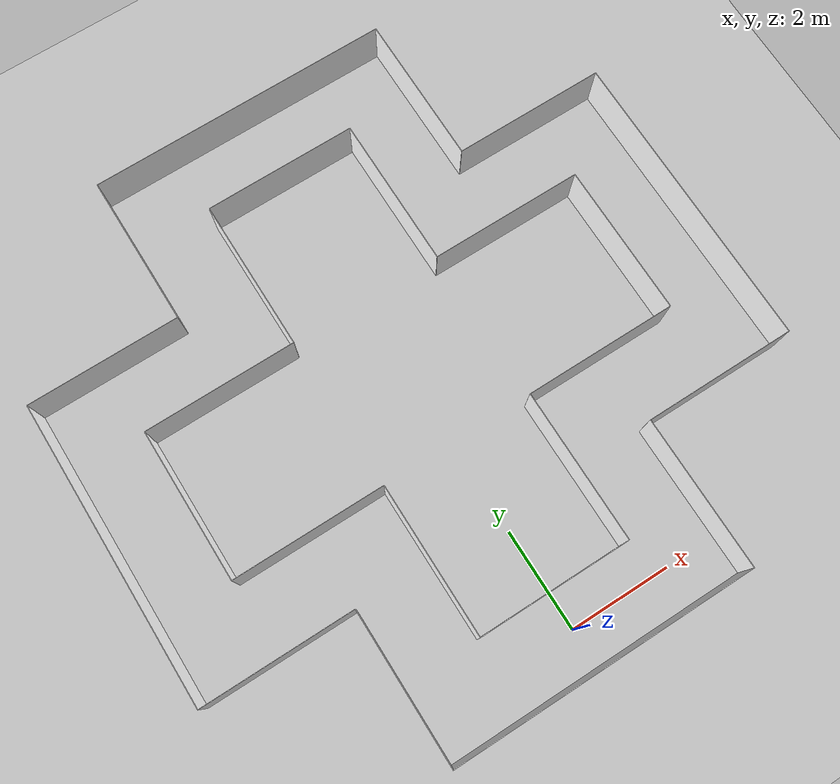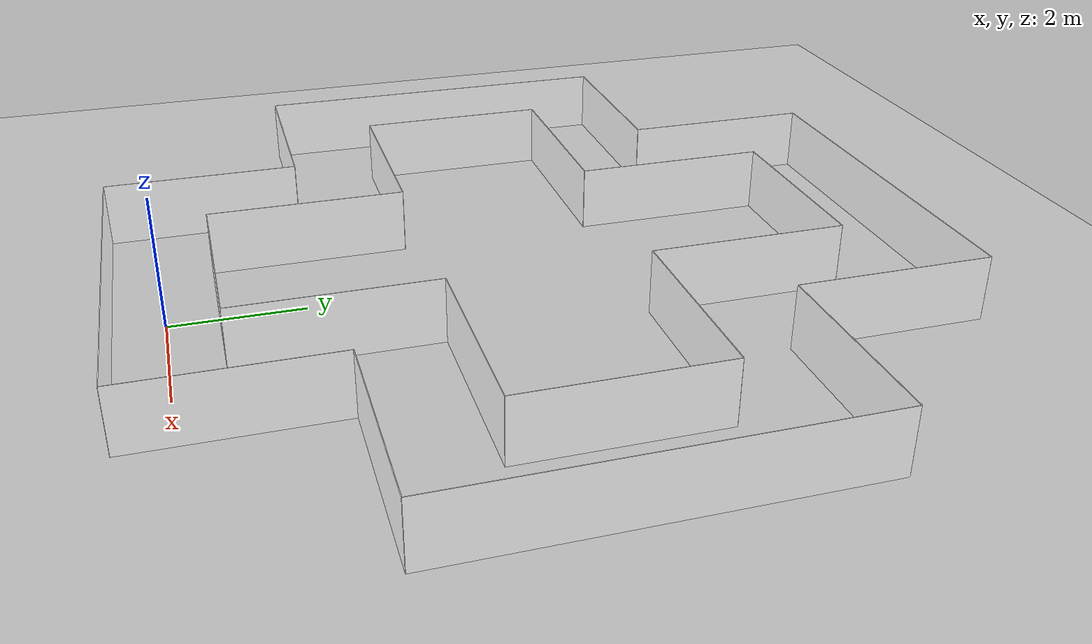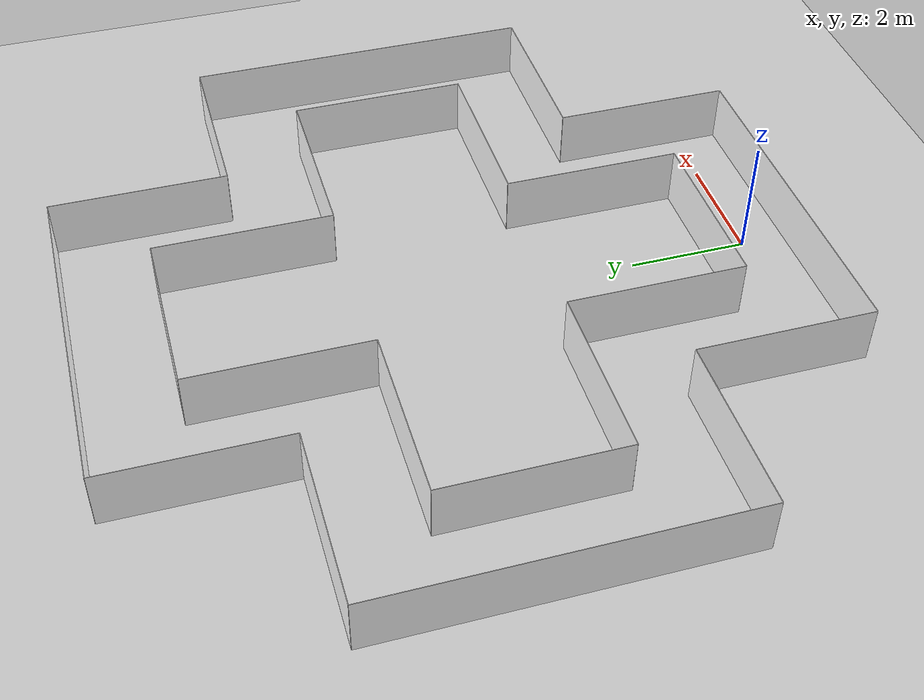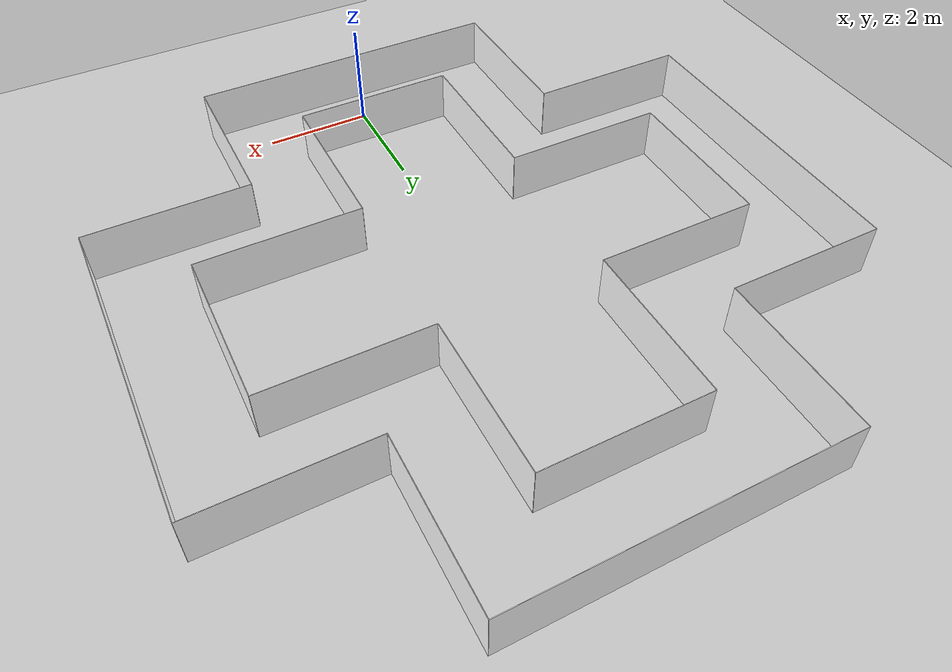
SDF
<?xml version="1.0" ?>
<sdf version="1.6">
  <world name="circuito_cuadrado">
    <!-- Configuración del entorno -->
    <include>
      <uri>model://sun</uri>
    </include>
    <include>
      <uri>model://ground_plane</uri>
    </include>

    <!-- Pared i1 -->
    <model name="wall_int_1">
      <static>true</static>
      <link name="link">
        <visual name="visual">
          <geometry>
            <box>
              <size>3 0.01 1</size>
            </box>
          </geometry>
          <material>
            <ambient>1 1 1 1</ambient>
          </material>
        </visual>
        <collision name="collision">
          <geometry>
            <box>
              <size>3 0.01 1</size>
            </box>
          </geometry>
        </collision>
      </link>
      <pose>0 0.75 0.5 0 0 0</pose>
    </model>

    <!-- Pared i2 -->
    <model name="wall_int_2">
      <static>true</static>
      <link name="link">
        <visual name="visual">
          <geometry>
            <box>
              <size>3 0.01 1</size>
            </box>
          </geometry>
          <material>
            <ambient>1 1 1 1</ambient>
          </material>
        </visual>
        <collision name="collision">
          <geometry>
            <box>
              <size>3 0.01 1</size>
            </box>
          </geometry>
        </collision>
      </link>
      <pose>1.5 2.25 0.5 0 0 1.5708</pose>
    </model>

    <!-- Pared i3 -->
    <model name="wall_int_3">
      <static>true</static>
      <link name="link">
        <visual name="visual">
          <geometry>
            <box>
              <size>3 0.01 1</size>
            </box>
          </geometry>
          <material>
            <ambient>1 1 1 1</ambient>
          </material>
        </visual>
        <collision name="collision">
          <geometry>
            <box>
              <size>3 0.01 1</size>
            </box>
          </geometry>
        </collision>
      </link>
      <pose>3 3.75 0.5 0 0 0</pose>
    </model>

    <!-- Pared i4 -->
    <model name="wall_int_4">
      <static>true</static>
      <link name="link">
        <visual name="visual">
          <geometry>
            <box>
              <size>3 0.01 1</size>
            </box>
          </geometry>
          <material>
            <ambient>1 1 1 1</ambient>
          </material>
        </visual>
        <collision name="collision">
          <geometry>
            <box>
              <size>3 0.01 1</size>
            </box>
          </geometry>
        </collision>
      </link>
      <pose>4.5 5.25 0.5 0 0 1.5708</pose>
    </model>

    <!-- Pared i5 -->
    <model name="wall_int_5">
      <static>true</static>
      <link name="link">
        <visual name="visual">
          <geometry>
            <box>
              <size>3 0.01 1</size>
            </box>
          </geometry>
          <material>
            <ambient>1 1 1 1</ambient>
          </material>
        </visual>
        <collision name="collision">
          <geometry>
            <box>
              <size>3 0.01 1</size>
            </box>
          </geometry>
        </collision>
      </link>
      <pose>3 6.75 0.5 0 0 0</pose>
    </model>

    <!-- Pared i6 -->
    <model name="wall_int_6">
      <static>true</static>
      <link name="link">
        <visual name="visual">
          <geometry>
            <box>
              <size>3 0.01 1</size>
            </box>
          </geometry>
          <material>
            <ambient>1 1 1 1</ambient>
          </material>
        </visual>
        <collision name="collision">
          <geometry>
            <box>
              <size>3 0.01 1</size>
            </box>
          </geometry>
        </collision>
      </link>
      <pose>1.5 8.25 0.5 0 0 1.5708</pose>
    </model>

    <!-- Pared i7 -->
    <model name="wall_int_7">
      <static>true</static>
      <link name="link">
        <visual name="visual">
          <geometry>
            <box>
              <size>3 0.01 1</size>
            </box>
          </geometry>
          <material>
            <ambient>1 1 1 1</ambient>
          </material>
        </visual>
        <collision name="collision">
          <geometry>
            <box>
              <size>3 0.01 1</size>
            </box>
          </geometry>
        </collision>
      </link>
      <pose>0 9.75 0.5 0 0 0</pose>
    </model>

    <!-- Pared i8 -->
    <model name="wall_int_8">
      <static>true</static>
      <link name="link">
        <visual name="visual">
          <geometry>
            <box>
              <size>3 0.01 1</size>
            </box>
          </geometry>
          <material>
            <ambient>1 1 1 1</ambient>
          </material>
        </visual>
        <collision name="collision">
          <geometry>
            <box>
              <size>3 0.01 1</size>
            </box>
          </geometry>
        </collision>
      </link>
      <pose>-1.5 8.25 0.5 0 0 1.5708</pose>
    </model>

    <!-- Pared i9 -->
    <model name="wall_int_9">
      <static>true</static>
      <link name="link">
        <visual name="visual">
          <geometry>
            <box>
              <size>3 0.01 1</size>
            </box>
          </geometry>
          <material>
            <ambient>1 1 1 1</ambient>
          </material>
        </visual>
        <collision name="collision">
          <geometry>
            <box>
              <size>3 0.01 1</size>
            </box>
          </geometry>
        </collision>
      </link>
      <pose>-3 6.75 0.5 0 0 0</pose>
    </model>

    <!-- Pared i10 -->
    <model name="wall_int_10">
      <static>true</static>
      <link name="link">
        <visual name="visual">
          <geometry>
            <box>
              <size>3 0.01 1</size>
            </box>
          </geometry>
          <material>
            <ambient>1 1 1 1</ambient>
          </material>
        </visual>
        <collision name="collision">
          <geometry>
            <box>
              <size>3 0.01 1</size>
            </box>
          </geometry>
        </collision>
      </link>
      <pose>-4.5 5.25 0.5 0 0 1.5708</pose>
    </model>

    <!-- Pared i11 -->
    <model name="wall_int_11">
      <static>true</static>
      <link name="link">
        <visual name="visual">
          <geometry>
            <box>
              <size>3 0.01 1</size>
            </box>
          </geometry>
          <material>
            <ambient>1 1 1 1</ambient>
          </material>
        </visual>
        <collision name="collision">
          <geometry>
            <box>
              <size>3 0.01 1</size>
            </box>
          </geometry>
        </collision>
      </link>
      <pose>-3 3.75 0.5 0 0 0</pose>
    </model>

    <!-- Pared i12 -->
    <model name="wall_int_12">
      <static>true</static>
      <link name="link">
        <visual name="visual">
          <geometry>
            <box>
              <size>3 0.01 1</size>
            </box>
          </geometry>
          <material>
            <ambient>1 1 1 1</ambient>
          </material>
        </visual>
        <collision name="collision">
          <geometry>
            <box>
              <size>3 0.01 1</size>
            </box>
          </geometry>
        </collision>
      </link>
      <pose>-1.5 2.25 0.5 0 0 1.5708</pose>
    </model>

    <!-- Pared e1 -->
    <model name="wall_ext_1">
      <static>true</static>
      <link name="link">
        <visual name="visual">
          <geometry>
            <box>
              <size>6 0.01 1</size>
            </box>
          </geometry>
          <material>
            <ambient>1 1 1 1</ambient>
          </material>
        </visual>
        <collision name="collision">
          <geometry>
            <box>
              <size>6 0.01 1</size>
            </box>
          </geometry>
        </collision>
      </link>
      <pose>0 -0.75 0.5 0 0 0</pose>
    </model>

    <!-- Pared e2 -->
    <model name="wall_ext_2">
      <static>true</static>
      <link name="link">
        <visual name="visual">
          <geometry>
            <box>
              <size>3 0.01 1</size>
            </box>
          </geometry>
          <material>
            <ambient>1 1 1 1</ambient>
          </material>
        </visual>
        <collision name="collision">
          <geometry>
            <box>
              <size>3 0.01 1</size>
            </box>
          </geometry>
        </collision>
      </link>
      <pose>3 0.75 0.5 0 0 1.5708</pose>
    </model>

    <!-- Pared e3 -->
    <model name="wall_ext_3">
      <static>true</static>
      <link name="link">
        <visual name="visual">
          <geometry>
            <box>
              <size>3 0.01 1</size>
            </box>
          </geometry>
          <material>
            <ambient>1 1 1 1</ambient>
          </material>
        </visual>
        <collision name="collision">
          <geometry>
            <box>
              <size>3 0.01 1</size>
            </box>
          </geometry>
        </collision>
      </link>
      <pose>4.5 2.25 0.5 0 0 0</pose>
    </model>

    <!-- Pared e4 -->
    <model name="wall_ext_4">
      <static>true</static>
      <link name="link">
        <visual name="visual">
          <geometry>
            <box>
              <size>6 0.01 1</size>
            </box>
          </geometry>
          <material>
            <ambient>1 1 1 1</ambient>
          </material>
        </visual>
        <collision name="collision">
          <geometry>
            <box>
              <size>6 0.01 1</size>
            </box>
          </geometry>
        </collision>
      </link>
      <pose>6 5.25 0.5 0 0 1.5708</pose>
    </model>

    <!-- Pared e5 -->
    <model name="wall_ext_5">
      <static>true</static>
      <link name="link">
        <visual name="visual">
          <geometry>
            <box>
              <size>3 0.01 1</size>
            </box>
          </geometry>
          <material>
            <ambient>1 1 1 1</ambient>
          </material>
        </visual>
        <collision name="collision">
          <geometry>
            <box>
              <size>3 0.01 1</size>
            </box>
          </geometry>
        </collision>
      </link>
      <pose>4.5 8.25 0.5 0 0 0</pose>
    </model>

    <!-- Pared e6 -->
    <model name="wall_ext_6">
      <static>true</static>
      <link name="link">
        <visual name="visual">
          <geometry>
            <box>
              <size>3 0.01 1</size>
            </box>
          </geometry>
          <material>
            <ambient>1 1 1 1</ambient>
          </material>
        </visual>
        <collision name="collision">
          <geometry>
            <box>
              <size>3 0.01 1</size>
            </box>
          </geometry>
        </collision>
      </link>
      <pose>3 9.75 0.5 0 0 1.5708</pose>
    </model>

    <!-- Pared e7 -->
    <model name="wall_ext_7">
      <static>true</static>
      <link name="link">
        <visual name="visual">
          <geometry>
            <box>
              <size>6 0.01 1</size>
            </box>
          </geometry>
          <material>
            <ambient>1 1 1 1</ambient>
          </material>
        </visual>
        <collision name="collision">
          <geometry>
            <box>
              <size>6 0.01 1</size>
            </box>
          </geometry>
        </collision>
      </link>
      <pose>0 11.25 0.5 0 0 0</pose>
    </model>

    <!-- Pared e8 -->
    <model name="wall_ext_8">
      <static>true</static>
      <link name="link">
        <visual name="visual">
          <geometry>
            <box>
              <size>3 0.01 1</size>
            </box>
          </geometry>
          <material>
            <ambient>1 1 1 1</ambient>
          </material>
        </visual>
        <collision name="collision">
          <geometry>
            <box>
              <size>3 0.01 1</size>
            </box>
          </geometry>
        </collision>
      </link>
      <pose>-3 9.75 0.5 0 0 1.5708</pose>
    </model>

    <!-- Pared e9 -->
    <model name="wall_ext_9">
      <static>true</static>
      <link name="link">
        <visual name="visual">
          <geometry>
            <box>
              <size>3 0.01 1</size>
            </box>
          </geometry>
          <material>
            <ambient>1 1 1 1</ambient>
          </material>
        </visual>
        <collision name="collision">
          <geometry>
            <box>
              <size>3 0.01 1</size>
            </box>
          </geometry>
        </collision>
      </link>
      <pose>-4.5 8.25 0.5 0 0 0</pose>
    </model>

    <!-- Pared e10 -->
    <model name="wall_ext_10">
      <static>true</static>
      <link name="link">
        <visual name="visual">
          <geometry>
            <box>
              <size>6 0.01 1</size>
            </box>
          </geometry>
          <material>
            <ambient>1 1 1 1</ambient>
          </material>
        </visual>
        <collision name="collision">
          <geometry>
            <box>
              <size>6 0.01 1</size>
            </box>
          </geometry>
        </collision>
      </link>
      <pose>-6 5.25 0.5 0 0 1.5708</pose>
    </model>

    <!-- Pared e11 -->
    <model name="wall_ext_11">
      <static>true</static>
      <link name="link">
        <visual name="visual">
          <geometry>
            <box>
              <size>3 0.01 1</size>
            </box>
          </geometry>
          <material>
            <ambient>1 1 1 1</ambient>
          </material>
        </visual>
        <collision name="collision">
          <geometry>
            <box>
              <size>3 0.01 1</size>
            </box>
          </geometry>
        </collision>
      </link>
      <pose>-4.5 2.25 0.5 0 0 0</pose>
    </model>

    <!-- Pared e12 -->
    <model name="wall_ext_12">
      <static>true</static>
      <link name="link">
        <visual name="visual">
          <geometry>
            <box>
              <size>3 0.01 1</size>
            </box>
          </geometry>
          <material>
            <ambient>1 1 1 1</ambient>
          </material>
        </visual>
        <collision name="collision">
          <geometry>
            <box>
              <size>3 0.01 1</size>
            </box>
          </geometry>
        </collision>
      </link>
      <pose>-3 0.75 0.5 0 0 1.5708</pose>
    </model>

  </world>
</sdf>
